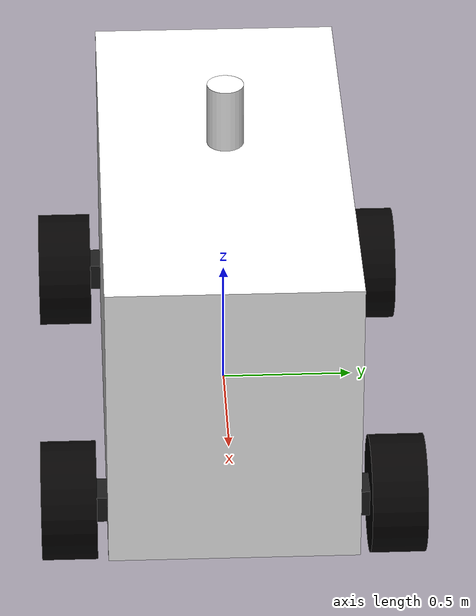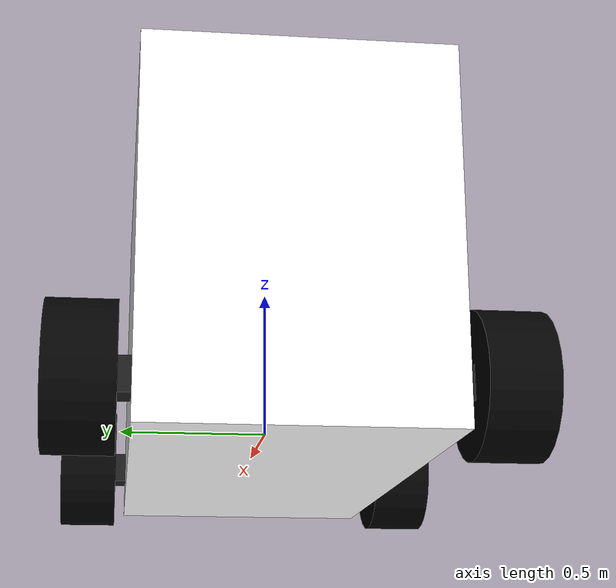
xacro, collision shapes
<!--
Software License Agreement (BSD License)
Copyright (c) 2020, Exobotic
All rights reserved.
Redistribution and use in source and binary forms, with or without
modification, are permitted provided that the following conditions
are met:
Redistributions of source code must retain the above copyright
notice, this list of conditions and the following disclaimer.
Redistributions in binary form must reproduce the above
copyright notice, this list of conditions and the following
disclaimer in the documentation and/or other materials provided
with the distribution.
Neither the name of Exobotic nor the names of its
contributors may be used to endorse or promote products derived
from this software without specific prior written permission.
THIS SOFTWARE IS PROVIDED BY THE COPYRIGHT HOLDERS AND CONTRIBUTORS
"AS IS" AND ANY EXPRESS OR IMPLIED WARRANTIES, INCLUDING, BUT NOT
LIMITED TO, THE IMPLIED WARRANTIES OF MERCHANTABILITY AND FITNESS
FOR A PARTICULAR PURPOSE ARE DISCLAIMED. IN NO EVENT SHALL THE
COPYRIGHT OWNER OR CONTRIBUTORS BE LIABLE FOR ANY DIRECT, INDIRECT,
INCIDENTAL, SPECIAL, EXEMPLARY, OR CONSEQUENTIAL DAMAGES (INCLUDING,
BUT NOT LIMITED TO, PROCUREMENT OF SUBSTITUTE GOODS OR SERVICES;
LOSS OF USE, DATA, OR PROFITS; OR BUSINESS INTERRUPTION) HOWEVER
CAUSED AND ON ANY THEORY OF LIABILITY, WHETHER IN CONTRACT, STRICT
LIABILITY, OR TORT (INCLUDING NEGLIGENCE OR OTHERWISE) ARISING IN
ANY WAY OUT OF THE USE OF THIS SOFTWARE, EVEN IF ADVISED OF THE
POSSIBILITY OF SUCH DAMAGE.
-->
<?xml version="1.0"?>

<!-- created with Phobos 1.0.1 "Capricious Choutengan" -->
  <robot name="m2"
         xmlns:xacro="http://www.ros.org/wiki/xacro">

    <material name="LiDAR_grey">
      <color rgba="0.59608 0.59608 0.59608 1.0"/>
    </material>

    <material name="Metal_Bling chrome">
      <color rgba="0.8 0.8 0.82431 1.0"/>
    </material>

    <material name="Synth_Tyre rubber">
      <color rgba="0.01678 0.01212 0.01212 1.0"/>
    </material>

    <material name="blue_police_light">
      <color rgba="0 0 1.0 1.0"/>
    </material>

    <material name="body_black">
      <color rgba="0.10594 0.10594 0.10594 1.0"/>
    </material>

    <material name="body_grey">
      <color rgba="0.96 0.96 0.96 1.0"/>
    </material>

    <material name="red_police_light">
      <color rgba="1.0 0 0 1.0"/>
    </material>

    <material name="white_police_light">
      <color rgba="1.0 1.0 1.0 1.0"/>
    </material>

    <material name="dummy_mat">
      <color rgba="0.4 0.4 0.4 1.0"/>
    </material>

    <link name="base_footprint"/>

    <link name="chassis">
      <inertial>
        <origin xyz="0.08838 -0.00198 0.17552" rpy="0 0 0"/>
        <mass value="200.0"/>
        <inertia ixx="24.43942" ixy="-3.57208" ixz="-2.64293" iyy="116.11656" iyz="0.10486" izz="111.43803"/>
      </inertial>

      <visual name="body_front_lights_vis">
        <origin xyz="0.98421 0.00023 0.09713" rpy="0 0 0"/>
        <geometry>
          <mesh filename="package://m2_description/meshes/dae/body_front_lights_vis.dae" scale="1.0 1.0 1.0"/>
        </geometry>
        <material name="white_police_light"/>
      </visual>
      <visual name="body_lights_blue_vis">
        <origin xyz="0.37794 0.18642 0.7649" rpy="0 0 0"/>
        <geometry>
          <mesh filename="package://m2_description/meshes/dae/body_lights_blue_vis.dae" scale="1.0 1.0 1.0"/>
        </geometry>
        <material name="blue_police_light"/>
      </visual>
      <visual name="body_lights_red_vis">
        <origin xyz="0.37978 -0.18222 0.76491" rpy="0 0 0"/>
        <geometry>
          <mesh filename="package://m2_description/meshes/dae/body_lights_red_vis.dae" scale="1.0 1.0 1.0"/>
        </geometry>
        <material name="red_police_light"/>
      </visual>
      <visual name="body_lights_white_vis">
        <origin xyz="0.40793 0.00023 0.7689" rpy="0 0 0"/>
        <geometry>
          <mesh filename="package://m2_description/meshes/dae/body_lights_white_vis.dae" scale="1.0 1.0 1.0"/>
        </geometry>
        <material name="white_police_light"/>
      </visual>
      <visual name="body_vis">
        <origin xyz="0.07415 0.00012 0.24822" rpy="0 0 0"/>
        <geometry>
          <mesh filename="package://m2_description/meshes/dae/body_vis.dae" scale="1.0 1.0 1.0"/>
        </geometry>
        <material name="body_grey"/>
      </visual>
      <visual name="camera_top_vis">
        <origin xyz="0.11195 0.00142 1.30874" rpy="-1.5708 0 0"/>
        <geometry>
          <mesh filename="package://m2_description/meshes/dae/camera_top_vis.dae" scale="1.0 1.0 1.0"/>
        </geometry>
        <material name="body_black"/>
      </visual>
      <visual name="chassis_vis">
        <origin xyz="0.01034 -3e-05 0.00065" rpy="0 0 0"/>
        <geometry>
          <mesh filename="package://m2_description/meshes/dae/chassis_vis.dae" scale="1.0 1.0 1.0"/>
        </geometry>
        <material name="Metal_Bling chrome"/>
      </visual>
      <visual name="text_body_vis">
        <origin xyz="-0.38196 0.00023 0.4187" rpy="0 0 0"/>
        <geometry>
          <mesh filename="package://m2_description/meshes/dae/text_body_vis.dae" scale="1.0 1.0 1.0"/>
        </geometry>
        <material name="body_black"/>
      </visual>
      <visual name="text_front_vis">
        <origin xyz="-0.38196 0.00023 0.4187" rpy="0 0 0"/>
        <geometry>
          <mesh filename="package://m2_description/meshes/dae/text_front_vis.dae" scale="1.0 1.0 1.0"/>
        </geometry>
        <material name="body_grey"/>
      </visual>

      <collision name="body_col">
        <origin xyz="0.00514 0.00023 0.42524" rpy="0 0 0"/>
        <geometry>
          <box size="2.01448 0.94935 1.16925"/>
        </geometry>
      </collision>
      <collision name="camera_top_col">
        <origin xyz="0.11195 0.0019 1.25215" rpy="0 0 0"/>
        <geometry>
          <cylinder radius="0.06976" length="0.25"/>
        </geometry>
      </collision>
      <collision name="chassis_col">
        <origin xyz="0.01121 0.00023 0.02431" rpy="0 0 0"/>
        <geometry>
          <box size="1.9958 0.72 0.35508"/>
        </geometry>
      </collision>

    </link>

    <link name="drive_motor_lb">
      <inertial>
        <origin xyz="-0.00105 0.08331 0.05321" rpy="0 0 0"/>
        <mass value="17.0"/>
        <inertia ixx="0.09492" ixy="6e-05" ixz="8e-05" iyy="0.03042" iyz="-0.00181" izz="0.09704"/>
      </inertial>
      <visual name="drive_motor_lb_vis">
        <origin xyz="0 0 0" rpy="0 0 0"/>
        <geometry>
          <mesh filename="package://m2_description/meshes/dae/drive_motor_lb_vis.dae" scale="1.0 1.0 1.0"/>
        </geometry>
        <material name="body_black"/>
      </visual>
      <collision name="drive_motor_lb_col">
        <origin xyz="0 0.09943 0.0535" rpy="0 0 0"/>
        <geometry>
          <box size="0.129 0.34444 0.107"/>
        </geometry>
      </collision>
    </link>

    <link name="drive_motor_lf">
      <inertial>
        <origin xyz="0.00102 0.07894 0.05182" rpy="0 0 0"/>
        <mass value="17.0"/>
        <inertia ixx="0.09256" ixy="0" ixz="4e-05" iyy="0.03047" iyz="-0.00143" izz="0.09479"/>
      </inertial>
      <visual name="drive_motor_lf_vis">
        <origin xyz="0 0 0" rpy="0 0 0"/>
        <geometry>
          <mesh filename="package://m2_description/meshes/dae/drive_motor_lf_vis.dae" scale="1.0 1.0 1.0"/>
        </geometry>
        <material name="body_black"/>
      </visual>
      <collision name="drive_motor_lf_col">
        <origin xyz="0 0.08243 0.0535" rpy="0 0 0"/>
        <geometry>
          <box size="0.129 0.31044 0.107"/>
        </geometry>
      </collision>
    </link>

    <link name="drive_motor_rb">
      <inertial>
        <origin xyz="-0.00156 -0.08306 0.05155" rpy="0 0 0"/>
        <mass value="17.0"/>
        <inertia ixx="0.0948" ixy="3e-05" ixz="-4e-05" iyy="0.03031" iyz="0.00155" izz="0.09706"/>
      </inertial>
      <visual name="drive_motor_rb_vis">
        <origin xyz="0 0 0" rpy="0 0 0"/>
        <geometry>
          <mesh filename="package://m2_description/meshes/dae/drive_motor_rb_vis.dae" scale="1.0 1.0 1.0"/>
        </geometry>
        <material name="body_black"/>
      </visual>
      <collision name="drive_motor_rb_col">
        <origin xyz="0 -0.09943 0.0535" rpy="0 0 0"/>
        <geometry>
          <box size="0.129 0.34444 0.107"/>
        </geometry>
      </collision>
    </link>

    <link name="drive_motor_rf">
      <inertial>
        <origin xyz="0.00053 -0.08238 0.0526" rpy="0 0 0"/>
        <mass value="17.0"/>
        <inertia ixx="0.09367" ixy="0" ixz="4e-05" iyy="0.03055" iyz="0.00168" izz="0.09585"/>
      </inertial>
      <visual name="drive_motor_rf_vis">
        <origin xyz="0 0 0" rpy="0 0 0"/>
        <geometry>
          <mesh filename="package://m2_description/meshes/dae/drive_motor_rf_vis.dae" scale="1.0 1.0 1.0"/>
        </geometry>
        <material name="body_black"/>
      </visual>
      <collision name="drive_motor_rf_col">
        <origin xyz="0 -0.08243 0.0535" rpy="0 0 0"/>
        <geometry>
          <box size="0.129 0.31044 0.107"/>
        </geometry>
      </collision>
    </link>

    <link name="shock_lb_1">
      <inertial>
        <origin xyz="0.05551 0.02184 0" rpy="0 0 0"/>
        <mass value="0.2"/>
        <inertia ixx="0.00025" ixy="2e-05" ixz="2e-05" iyy="0.00016" iyz="-0.0001" izz="0.00014"/>
      </inertial>
      <visual name="shock_lb_1_vis">
        <origin xyz="0 0 0" rpy="-0.37525 -1.5708 0"/>
        <geometry>
          <mesh filename="package://m2_description/meshes/dae/shock_lb_1_vis.dae" scale="1.0 1.0 1.0"/>
        </geometry>
        <material name="Metal_Bling chrome"/>
      </visual>
      <collision name="shock_lb_1_col">
        <origin xyz="0.0564 0.02221 0" rpy="0.37525 -1.5708 0"/>
        <geometry>
          <cylinder radius="0.026" length="0.143"/>
        </geometry>
      </collision>
    </link>

    <link name="shock_lb_2">
      <inertial>
        <origin xyz="-0.00989 -0.0039 0" rpy="0 0 0"/>
        <mass value="0.1"/>
        <inertia ixx="2e-05" ixy="0" ixz="0" iyy="2e-05" iyz="0" izz="2e-05"/>
      </inertial>
      <visual name="shock_lb_2_vis">
        <origin xyz="0 0 0" rpy="-0.37525 -1.5708 0"/>
        <geometry>
          <mesh filename="package://m2_description/meshes/dae/shock_lb_2_vis.dae" scale="1.0 1.0 1.0"/>
        </geometry>
        <material name="Metal_Bling chrome"/>
      </visual>
      <collision name="shock_lb_2_col">
        <origin xyz="-0.01732 -0.00682 0" rpy="0.37525 -1.5708 0"/>
        <geometry>
          <cylinder radius="0.025" length="0.0588"/>
        </geometry>
      </collision>
    </link>

    <link name="shock_lf_1">
      <inertial>
        <origin xyz="0.05551 0.02184 0" rpy="0 0 0"/>
        <mass value="0.2"/>
        <inertia ixx="0.00025" ixy="2e-05" ixz="2e-05" iyy="0.00016" iyz="-0.0001" izz="0.00014"/>
      </inertial>
      <visual name="shock_lf_1_vis">
        <origin xyz="0 0 0" rpy="-0.37525 -1.5708 0"/>
        <geometry>
          <mesh filename="package://m2_description/meshes/dae/shock_lf_1_vis.dae" scale="1.0 1.0 1.0"/>
        </geometry>
        <material name="Metal_Bling chrome"/>
      </visual>
      <collision name="shock_lf_1_col">
        <origin xyz="0.0564 0.02221 0" rpy="0.37525 -1.5708 0"/>
        <geometry>
          <cylinder radius="0.026" length="0.143"/>
        </geometry>
      </collision>
    </link>

    <link name="shock_lf_2">
      <inertial>
        <origin xyz="-0.00989 -0.00389 0" rpy="0 0 0"/>
        <mass value="0.1"/>
        <inertia ixx="2e-05" ixy="0" ixz="0" iyy="2e-05" iyz="0" izz="2e-05"/>
      </inertial>
      <visual name="shock_lf_2_vis">
        <origin xyz="0 0 0" rpy="-0.37525 -1.5708 0"/>
        <geometry>
          <mesh filename="package://m2_description/meshes/dae/shock_lf_2_vis.dae" scale="1.0 1.0 1.0"/>
        </geometry>
        <material name="Metal_Bling chrome"/>
      </visual>
      <collision name="shock_lf_2_col">
        <origin xyz="-0.01732 -0.00682 0" rpy="0.37525 -1.5708 0"/>
        <geometry>
          <cylinder radius="0.025" length="0.0588"/>
        </geometry>
      </collision>
    </link>

    <link name="shock_rb_1">
      <inertial>
        <origin xyz="0.05551 -0.02184 0" rpy="0 0 0"/>
        <mass value="0.2"/>
        <inertia ixx="0.00025" ixy="-2e-05" ixz="2e-05" iyy="0.00016" iyz="0.0001" izz="0.00014"/>
      </inertial>
      <visual name="shock_rb_1_vis">
        <origin xyz="0 0 0" rpy="-0.37525 -1.5708 0"/>
        <geometry>
          <mesh filename="package://m2_description/meshes/dae/shock_rb_1_vis.dae" scale="1.0 1.0 1.0"/>
        </geometry>
        <material name="Metal_Bling chrome"/>
      </visual>
      <collision name="shock_rb_1_col">
        <origin xyz="0.0564 -0.02221 0" rpy="-0.37525 -1.5708 0"/>
        <geometry>
          <cylinder radius="0.026" length="0.143"/>
        </geometry>
      </collision>
    </link>

    <link name="shock_rb_2">
      <inertial>
        <origin xyz="-0.00989 0.0039 0" rpy="0 0 0"/>
        <mass value="0.1"/>
        <inertia ixx="2e-05" ixy="0" ixz="0" iyy="2e-05" iyz="0" izz="2e-05"/>
      </inertial>
      <visual name="shock_rb_2_vis">
        <origin xyz="0 0 0" rpy="-0.37525 -1.5708 0"/>
        <geometry>
          <mesh filename="package://m2_description/meshes/dae/shock_rb_2_vis.dae" scale="1.0 1.0 1.0"/>
        </geometry>
        <material name="Metal_Bling chrome"/>
      </visual>
      <collision name="shock_rb_2_col">
        <origin xyz="-0.01732 0.00682 0" rpy="-0.37525 -1.5708 0"/>
        <geometry>
          <cylinder radius="0.025" length="0.0588"/>
        </geometry>
      </collision>
    </link>

    <link name="shock_rf_1">
      <inertial>
        <origin xyz="0.05551 -0.02184 0" rpy="0 0 0"/>
        <mass value="0.2"/>
        <inertia ixx="0.00025" ixy="-2e-05" ixz="2e-05" iyy="0.00016" iyz="0.0001" izz="0.00014"/>
      </inertial>
      <visual name="shock_rf_1_vis">
        <origin xyz="-0.00212 0 0" rpy="-0.37525 -1.5708 0"/>
        <geometry>
          <mesh filename="package://m2_description/meshes/dae/shock_rf_1_vis.dae" scale="1.0 1.0 1.0"/>
        </geometry>
        <material name="Metal_Bling chrome"/>
      </visual>
      <collision name="shock_rf_1_col">
        <origin xyz="0.0564 -0.02221 0" rpy="-0.37525 -1.5708 0"/>
        <geometry>
          <cylinder radius="0.026" length="0.143"/>
        </geometry>
      </collision>
    </link>

    <link name="shock_rf_2">
      <inertial>
        <origin xyz="-0.00989 0.0039 0" rpy="0 0 0"/>
        <mass value="0.1"/>
        <inertia ixx="2e-05" ixy="0" ixz="0" iyy="2e-05" iyz="0" izz="2e-05"/>
      </inertial>
      <visual name="shock_rf_2_vis">
        <origin xyz="0 0 0" rpy="-0.37525 -1.5708 0"/>
        <geometry>
          <mesh filename="package://m2_description/meshes/dae/shock_rf_2_vis.dae" scale="1.0 1.0 1.0"/>
        </geometry>
        <material name="Metal_Bling chrome"/>
      </visual>
      <collision name="shock_rf_2_col">
        <origin xyz="-0.01732 0.00682 0" rpy="-0.37525 -1.5708 0"/>
        <geometry>
          <cylinder radius="0.025" length="0.0855"/>
        </geometry>
      </collision>
    </link>

    <link name="steering_strut_lb">
      <inertial>
        <origin xyz="-0.08769 0.29243 0.00302" rpy="0 0 0"/>
        <mass value="25.0"/>
        <inertia ixx="0.31565" ixy="-0.00098" ixz="-0.00177" iyy="0.16606" iyz="0.03697" izz="0.18926"/>
      </inertial>
      <visual name="steering_strut_lb_vis">
        <origin xyz="0 0 0" rpy="0 -1.5708 0"/>
        <geometry>
          <mesh filename="package://m2_description/meshes/dae/steering_strut_lb_vis.dae" scale="1.0 1.0 1.0"/>
        </geometry>
        <material name="body_black"/>
      </visual>
      <collision name="steering_strut_lb_col">
        <origin xyz="-0.13494 0.19601 0" rpy="0 -1.5708 0"/>
        <geometry>
          <box size="0.129 0.43202 0.30988"/>
        </geometry>
      </collision>
    </link>

    <link name="steering_strut_lf">
      <inertial>
        <origin xyz="-0.08804 0.29249 -0.0033" rpy="0 0 0"/>
        <mass value="25.0"/>
        <inertia ixx="0.31482" ixy="0.001" ixz="0.00195" iyy="0.16594" iyz="0.03691" izz="0.18863"/>
      </inertial>
      <visual name="steering_strut_lf_vis">
        <origin xyz="0 0 0" rpy="0 -1.5708 0"/>
        <geometry>
          <mesh filename="package://m2_description/meshes/dae/steering_strut_lf_vis.dae" scale="1.0 1.0 1.0"/>
        </geometry>
        <material name="body_black"/>
      </visual>
      <collision name="steering_strut_lf_col">
        <origin xyz="-0.13494 0.19601 0" rpy="0 -1.5708 0"/>
        <geometry>
          <box size="0.129 0.43202 0.30988"/>
        </geometry>
      </collision>
    </link>

    <link name="steering_strut_rb">
      <inertial>
        <origin xyz="-0.08813 -0.29272 0.00331" rpy="0 0 0"/>
        <mass value="25.0"/>
        <inertia ixx="0.31515" ixy="-0.001" ixz="0.00196" iyy="0.16587" iyz="-0.03697" izz="0.18903"/>
      </inertial>
      <visual name="steering_strut_rb_vis">
        <origin xyz="0 0 0" rpy="0 -1.5708 0"/>
        <geometry>
          <mesh filename="package://m2_description/meshes/dae/steering_strut_rb_vis.dae" scale="1.0 1.0 1.0"/>
        </geometry>
        <material name="body_black"/>
      </visual>
      <collision name="steering_strut_rb_col">
        <origin xyz="-0.13494 -0.19601 0" rpy="0 -1.5708 0"/>
        <geometry>
          <box size="0.129 0.43202 0.30988"/>
        </geometry>
      </collision>
    </link>

    <link name="steering_strut_rf">
      <inertial>
        <origin xyz="-0.08814 -0.29281 -0.00283" rpy="0 0 0"/>
        <mass value="25.0"/>
        <inertia ixx="0.3161" ixy="0.00093" ixz="-0.00165" iyy="0.16581" iyz="-0.03733" izz="0.18996"/>
      </inertial>
      <visual name="steering_strut_rf_vis">
        <origin xyz="0 0 0" rpy="0 -1.5708 0"/>
        <geometry>
          <mesh filename="package://m2_description/meshes/dae/steering_strut_rf_vis.dae" scale="1.0 1.0 1.0"/>
        </geometry>
        <material name="body_black"/>
      </visual>
      <collision name="steering_strut_rf_col">
        <origin xyz="-0.13494 -0.19601 0" rpy="0 -1.5708 0"/>
        <geometry>
          <box size="0.129 0.43202 0.30988"/>
        </geometry>
      </collision>
    </link>

    <link name="wheel_lb">
      <inertial>
        <origin xyz="3e-05 0.00876 0" rpy="0 0 0"/>
        <mass value="28.0"/>
        <inertia ixx="0.35771" ixy="0" ixz="2e-05" iyy="0.56131" iyz="0" izz="0.35768"/>
      </inertial>
      <visual name="wheel_lb_vis">
        <origin xyz="-1e-05 0.00056 1e-05" rpy="0 0 0"/>
        <geometry>
          <mesh filename="package://m2_description/meshes/dae/wheel_lb_vis.dae" scale="1.0 1.0 1.0"/>
        </geometry>
        <material name="Synth_Tyre rubber"/>
      </visual>
      <collision name="wheel_lb_col">
        <origin xyz="0 0 0" rpy="1.5708 0 0"/>
        <geometry>
          <cylinder radius="0.22423" length="0.20878"/>
        </geometry>
      </collision>
    </link>

    <link name="wheel_lf">
      <inertial>
        <origin xyz="0 0 0" rpy="0 0 0"/>
        <mass value="28.0"/>
        <inertia ixx="0.35711" ixy="0" ixz="-2e-05" iyy="0.56069" iyz="0" izz="0.35709"/>
      </inertial>
      <visual name="wheel_lf_vis">
        <origin xyz="6e-05 -0.00772 1e-05" rpy="0 0 0"/>
        <geometry>
          <mesh filename="package://m2_description/meshes/dae/wheel_lf_vis.dae" scale="1.0 1.0 1.0"/>
        </geometry>
        <material name="Synth_Tyre rubber"/>
      </visual>
      <collision name="wheel_lf_col">
        <origin xyz="3e-05 -0.00814 0" rpy="1.5708 0 0"/>
        <geometry>
          <cylinder radius="0.22423" length="0.20878"/>
        </geometry>
      </collision>
    </link>

    <link name="wheel_rb">
      <inertial>
        <origin xyz="3e-05 -0.00876 0" rpy="0 0 0"/>
        <mass value="28.0"/>
        <inertia ixx="0.35771" ixy="0" ixz="-2e-05" iyy="0.56131" iyz="0" izz="0.35768"/>
      </inertial>
      <visual name="wheel_rb_vis">
        <origin xyz="-1e-05 -0.00055 1e-05" rpy="0 0 0"/>
        <geometry>
          <mesh filename="package://m2_description/meshes/dae/wheel_rb_vis.dae" scale="1.0 1.0 1.0"/>
        </geometry>
        <material name="Synth_Tyre rubber"/>
      </visual>
      <collision name="wheel_rb_col">
        <origin xyz="0 0 0" rpy="1.5708 0 0"/>
        <geometry>
          <cylinder radius="0.22423" length="0.20878"/>
        </geometry>
      </collision>
    </link>

    <link name="wheel_rf">
      <inertial>
        <origin xyz="-3e-05 -0.00814 0" rpy="0 0 0"/>
        <mass value="28.0"/>
        <inertia ixx="0.35711" ixy="0" ixz="2e-05" iyy="0.56069" iyz="0" izz="0.35709"/>
      </inertial>
      <visual name="wheel_rf_vis">
        <origin xyz="3e-05 -0.00041 1e-05" rpy="0 0 0"/>
        <geometry>
          <mesh filename="package://m2_description/meshes/dae/wheel_rf.vis.dae" scale="1.0 1.0 1.0"/>
        </geometry>
        <material name="Synth_Tyre rubber"/>
      </visual>
      <collision name="wheel_rf_col">
        <origin xyz="0 0 0" rpy="1.5708 0 0"/>
        <geometry>
          <cylinder radius="0.22423" length="0.20878"/>
        </geometry>
      </collision>
    </link>

    <!-- ### JOINTS ### -->

    <joint name="base_footprint_to_chassis" type="fixed">
      <origin xyz="0 0 0" rpy="0 0 0"/>
      <parent link="base_footprint"/>
      <child link="chassis"/>
    </joint>

    <!-- This joint contains the steering motor too -->
    <joint name="steering_strut_lb_to_drive_motor_lb" type="revolute">
      <origin xyz="-0.07688 0.338 0" rpy="0 -1.5708 0"/>
      <parent link="steering_strut_lb"/>
      <child link="drive_motor_lb"/>
      <axis xyz="0 0 1.0"/>
      <limit lower="-0.575958653" upper="0.575958653" effort="1000.0" velocity="3.0"/>
      <!-- lower and upper limits => rad -->
      <!-- effort => N.m -->
      <!-- velocity => rad/s -->
      <dynamics damping="0.7"/>
    </joint>

    <!-- This joint contains the steering motor too -->
    <joint name="steering_strut_lf_to_drive_motor_lf" type="revolute">
      <origin xyz="-0.07688 0.338 0" rpy="0 -1.5708 0"/>
      <parent link="steering_strut_lf"/>
      <child link="drive_motor_lf"/>
      <axis xyz="0 0 -1.0"/>
      <limit lower="-0.575958653" upper="0.575958653" effort="1000.0" velocity="3.0"/>
      <!-- lower and upper limits => rad -->
      <!-- effort => N.m -->
      <!-- velocity => rad/s -->
      <dynamics damping="0.7"/>
    </joint>

    <!-- This joint contains the steering motor too -->
    <joint name="steering_strut_rb_to_drive_motor_rb" type="revolute">
      <origin xyz="-0.07688 -0.338 0" rpy="0 -1.5708 0"/>
      <parent link="steering_strut_rb"/>
      <child link="drive_motor_rb"/>
      <axis xyz="0 0 -1.0"/>
      <limit lower="-0.575958653" upper="0.575958653" effort="1000.0" velocity="3.0"/>
      <!-- lower and upper limits => rad -->
      <!-- effort => N.m -->
      <!-- velocity => rad/s -->
      <dynamics damping="0.7"/>
    </joint>

    <!-- This joint contains the steering motor too -->
    <joint name="steering_strut_rf_to_drive_motor_rf" type="revolute">
      <origin xyz="-0.07688 -0.338 0" rpy="0 -1.5708 0"/>
      <parent link="steering_strut_rf"/>
      <child link="drive_motor_rf"/>
      <axis xyz="0 0 1.0"/>
      <limit lower="-0.575958653" upper="0.575958653" effort="1000.0" velocity="3.0"/>
      <!-- lower and upper limits => rad -->
      <!-- effort => N.m -->
      <!-- velocity => rad/s -->
      <dynamics damping="0.7"/>
    </joint>

    <joint name="chassis_to_shock_lb_1" type="continuous">
      <origin xyz="-0.8202 0.10995 0.03063" rpy="0 1.5708 0"/>
      <parent link="chassis"/>
      <child link="shock_lb_1"/>
      <axis xyz="0 0 1.0"/>
      <limit effort="0" velocity="0"/>
    </joint>

    <joint name="steering_strut_lb_to_shock_lb_2" type="continuous">
      <origin xyz="-0.02 0.114 -0.00044" rpy="0 0 0"/>
      <parent link="steering_strut_lb"/>
      <child link="shock_lb_2"/>
      <axis xyz="0 0 1.0"/>
      <limit effort="0" velocity="0"/>
    </joint>

    <joint name="chassis_to_shock_lf_1" type="continuous">
      <origin xyz="0.84304 0.10995 0.03063" rpy="0 1.5708 0"/>
      <parent link="chassis"/>
      <child link="shock_lf_1"/>
      <axis xyz="0 0 1.0"/>
      <limit effort="0" velocity="0"/>
    </joint>

    <joint name="steering_strut_lf_to_shock_lf_2" type="continuous">
      <origin xyz="-0.02 0.114 0.00043" rpy="0 0 0"/>
      <parent link="steering_strut_lf"/>
      <child link="shock_lf_2"/>
      <axis xyz="0 0 1.0"/>
      <limit effort="0" velocity="0"/>
    </joint>

    <joint name="chassis_to_shock_rb_1" type="continuous">
      <origin xyz="-0.8202 -0.1095 0.03063" rpy="0 1.5708 0"/>
      <parent link="chassis"/>
      <child link="shock_rb_1"/>
      <axis xyz="0 0 1.0"/>
      <limit effort="0" velocity="0"/>
    </joint>

    <joint name="steering_strut_rb_to_shock_rb_2" type="continuous">
      <origin xyz="-0.02 -0.114 -0.00044" rpy="0 0 0"/>
      <parent link="steering_strut_rb"/>
      <child link="shock_rb_2"/>
      <axis xyz="0 0 1.0"/>
      <limit effort="0" velocity="0"/>
    </joint>

    <joint name="chassis_to_shock_rf_1" type="continuous">
      <origin xyz="0.84304 -0.1095 0.03063" rpy="0 1.5708 0"/>
      <parent link="chassis"/>
      <child link="shock_rf_1"/>
      <axis xyz="0 0 1.0"/>
      <limit effort="0" velocity="0"/>
    </joint>

    <joint name="steering_strut_rf_to_shock_rf_2" type="continuous">
      <origin xyz="-0.02 -0.114 0.00044" rpy="0 0 0"/>
      <parent link="steering_strut_rf"/>
      <child link="shock_rf_2"/>
      <axis xyz="0 0 1.0"/>
      <limit effort="0" velocity="0"/>
    </joint>

    <joint name="chassis_to_steering_strut_lb" type="continuous">
      <origin xyz="-0.81976 0.05092 -0.12893" rpy="0 1.5708 0"/>
      <parent link="chassis"/>
      <child link="steering_strut_lb"/>
      <axis xyz="0 0 1.0"/>
    </joint>

    <joint name="chassis_to_steering_strut_lf" type="continuous">
      <origin xyz="0.8426 0.05092 -0.12893" rpy="0 1.5708 0"/>
      <parent link="chassis"/>
      <child link="steering_strut_lf"/>
      <axis xyz="0 0 1.0"/>
    </joint>

    <joint name="chassis_to_steering_strut_rb" type="continuous">
      <origin xyz="-0.81976 -0.05047 -0.12893" rpy="0 1.5708 0"/>
      <parent link="chassis"/>
      <child link="steering_strut_rb"/>
      <axis xyz="0 0 1.0"/>
    </joint>

    <joint name="chassis_to_steering_strut_rf" type="continuous">
      <origin xyz="0.8426 -0.05047 -0.12893" rpy="0 1.5708 0"/>
      <parent link="chassis"/>
      <child link="steering_strut_rf"/>
      <axis xyz="0 0 1.0"/>
    </joint>

    <joint name="drive_motor_lb_to_wheel_lb" type="continuous">
      <origin xyz="0 0.22997 0.0559" rpy="0 0 0"/>
      <parent link="drive_motor_lb"/>
      <child link="wheel_lb"/>
      <axis xyz="0 -1.0 0"/>
      <limit effort="200.0" velocity="2000.0"/>
      <!-- effort = ? (0.5 stall torque) -->
      <!-- effort => N.m -->
      <!-- velocity => rad/s -->
    </joint>

    <joint name="drive_motor_lf_to_wheel_lf" type="continuous">
      <origin xyz="-3e-05 0.23811 0.0559" rpy="0 0 0"/>
      <parent link="drive_motor_lf"/>
      <child link="wheel_lf"/>
      <axis xyz="0 -1.0 0"/>
      <limit effort="200.0" velocity="2000.0"/>
      <!-- effort = ? (0.5 stall torque) -->
      <!-- effort => N.m -->
      <!-- velocity => rad/s -->
    </joint>

    <joint name="drive_motor_rb_to_wheel_rb" type="continuous">
      <origin xyz="0 -0.22997 0.0559" rpy="0 0 0"/>
      <parent link="drive_motor_rb"/>
      <child link="wheel_rb"/>
      <axis xyz="0 -1.0 0"/>
      <limit effort="200.0" velocity="2000.0"/>
      <!-- effort = ? (0.5 stall torque) -->
      <!-- effort => N.m -->
      <!-- velocity => rad/s -->
    </joint>

    <joint name="drive_motor_rf_to_wheel_rf" type="continuous">
      <origin xyz="0 -0.22997 0.0559" rpy="0 0 0"/>
      <parent link="drive_motor_rf"/>
      <child link="wheel_rf"/>
      <axis xyz="0 -1.0 0"/>
      <limit effort="200.0" velocity="2000.0"/>
      <!-- effort = ? (0.5 stall torque) -->
      <!-- effort => N.m -->
      <!-- velocity => rad/s -->
    </joint>

    <!-- ### TRANSMISSIONS ### -->
		<transmission name="wheel_rf" type="SimpleTransmission">
			<type>transmission_interface/SimpleTransmission</type>
			<actuator name="wheel_rf">
				<mechanicalReduction>1</mechanicalReduction>
			</actuator>
			<joint name="drive_motor_rf_to_wheel_rf">
				<hardwareInterface>VelocityJointInterface</hardwareInterface>
			</joint>
		</transmission>

		<transmission name="wheel_lf" type="SimpleTransmission">
			<type>transmission_interface/SimpleTransmission</type>
			<actuator name="wheel_lf">
				<mechanicalReduction>1</mechanicalReduction>
			</actuator>
			<joint name="drive_motor_lf_to_wheel_lf">
				<hardwareInterface>VelocityJointInterface</hardwareInterface>
			</joint>
		</transmission>

		<transmission name="wheel_rb" type="SimpleTransmission">
			<type>transmission_interface/SimpleTransmission</type>
			<actuator name="wheel_rb">
				<mechanicalReduction>1</mechanicalReduction>
			</actuator>
			<joint name="drive_motor_rb_to_wheel_rb">
				<hardwareInterface>VelocityJointInterface</hardwareInterface>
			</joint>
		</transmission>

		<transmission name="wheel_lb" type="SimpleTransmission">
			<type>transmission_interface/SimpleTransmission</type>
			<actuator name="wheel_lb">
				<mechanicalReduction>1</mechanicalReduction>
			</actuator>
			<joint name="drive_motor_lb_to_wheel_lb">
				<hardwareInterface>VelocityJointInterface</hardwareInterface>
			</joint>
		</transmission>

    <transmission name="steering_rf" type="SimpleTransmission">
      <type>transmission_interface/SimpleTransmission</type>
      <actuator name="steering_rf">
        <hardwareInterface>PositionJointInterface</hardwareInterface>
        <mechanicalReduction>1</mechanicalReduction>
      </actuator>
      <joint name="steering_strut_rf_to_drive_motor_rf">
        <hardwareInterface>PositionJointInterface</hardwareInterface>
      </joint>
    </transmission>

    <transmission name="steering_lf" type="SimpleTransmission">
      <type>transmission_interface/SimpleTransmission</type>
      <actuator name="steering_lf">
        <hardwareInterface>PositionJointInterface</hardwareInterface>
        <mechanicalReduction>1</mechanicalReduction>
      </actuator>
      <joint name="steering_strut_lf_to_drive_motor_lf">
        <hardwareInterface>PositionJointInterface</hardwareInterface>
      </joint>
    </transmission>

    <transmission name="steering_rb" type="SimpleTransmission">
      <type>transmission_interface/SimpleTransmission</type>
      <actuator name="steering_rb">
        <hardwareInterface>PositionJointInterface</hardwareInterface>
        <mechanicalReduction>1</mechanicalReduction>
      </actuator>
      <joint name="steering_strut_rb_to_drive_motor_rb">
        <hardwareInterface>PositionJointInterface</hardwareInterface>
      </joint>
    </transmission>

    <transmission name="steering_lb" type="SimpleTransmission">
      <type>transmission_interface/SimpleTransmission</type>
      <actuator name="steering_lb">
        <hardwareInterface>PositionJointInterface</hardwareInterface>
        <mechanicalReduction>1</mechanicalReduction>
      </actuator>
      <joint name="steering_strut_lb_to_drive_motor_lb">
        <hardwareInterface>PositionJointInterface</hardwareInterface>
      </joint>
    </transmission>

    <gazebo reference="wheel_lf">
			<mu1 value="1.0"/>
			<mu2 value="1.0"/>
			<kp value="10000000.0" />
			<kd value="1.0" />
			<fdir1 value="1 0 0"/>
      <gravity>true</gravity>
      <selfCollide>false</selfCollide>
    </gazebo>

    <gazebo reference="wheel_rf">
			<mu1 value="1.0"/>
			<mu2 value="1.0"/>
			<kp value="10000000.0" />
			<kd value="1.0" />
			<fdir1 value="1 0 0"/>
      <gravity>true</gravity>
      <selfCollide>false</selfCollide>
    </gazebo>

    <gazebo reference="wheel_lb">
			<mu1 value="1.0"/>
			<mu2 value="1.0"/>
			<kp value="10000000.0" />
			<kd value="1.0" />
			<fdir1 value="1 0 0"/>
      <gravity>true</gravity>
      <selfCollide>false</selfCollide>
    </gazebo>

    <gazebo reference="wheel_rb">
			<mu1 value="1.0"/>
			<mu2 value="1.0"/>
			<kp value="10000000.0" />
			<kd value="1.0" />
			<fdir1 value="1 0 0"/>
      <gravity>true</gravity>
      <selfCollide>false</selfCollide>
    </gazebo>

    <gazebo>

      <plugin name="gazebo_ros_control" filename="libgazebo_ros_control.so"/>

      <joint name="shock_lf" type="prismatic">
        <child>shock_lf_1</child>
        <parent>shock_lf_2</parent>
        <axis>
          <xyz>0 0 1</xyz>
          <limit>
            <lower>0.0</lower>
            <upper>0.08</upper>
            <effort>60</effort>
            <velocity>1000</velocity>
            <!-- upper and lower limits are in meters -->
            <!-- effort is in N (effort = shock_stroke * spring constant)-->
          </limit>
        </axis>
        </joint>

      <joint name="shock_lb" type="prismatic">
        <child>shock_lb_1</child>
        <parent>shock_lb_2</parent>
        <axis>
          <xyz>0 0 1</xyz>
          <limit>
            <lower>0.0</lower>
            <upper>0.08</upper>
            <effort>60</effort>
            <velocity>1000</velocity>
            <!-- upper and lower limits are in meters -->
            <!-- effort is in N (effort = shock_stroke * spring constant)-->
          </limit>
        </axis>
        </joint>

      <joint name="shock_rf" type="prismatic">
        <child>shock_rf_1</child>
        <parent>shock_rf_2</parent>
        <axis>
          <xyz>0 0 1</xyz>
          <limit>
            <lower>0.0</lower>
            <upper>0.08</upper>
            <effort>60</effort>
            <velocity>1000</velocity>
            <!-- upper and lower limits are in meters -->
            <!-- effort is in N (effort = shock_stroke * spring constant)-->
          </limit>
        </axis>
        </joint>

      <joint name="shock_rb" type="prismatic">
        <child>shock_rb_1</child>
        <parent>shock_rb_2</parent>
        <axis>
          <xyz>0 0 1</xyz>
          <limit>
            <lower>0.0</lower>
            <upper>0.08</upper>
            <effort>60</effort>
            <velocity>1000</velocity>
            <!-- upper and lower limits are in meters -->
            <!-- effort is in N (effort = shock_stroke * spring constant)-->
          </limit>
        </axis>
        </joint>

    </gazebo>
</robot>
